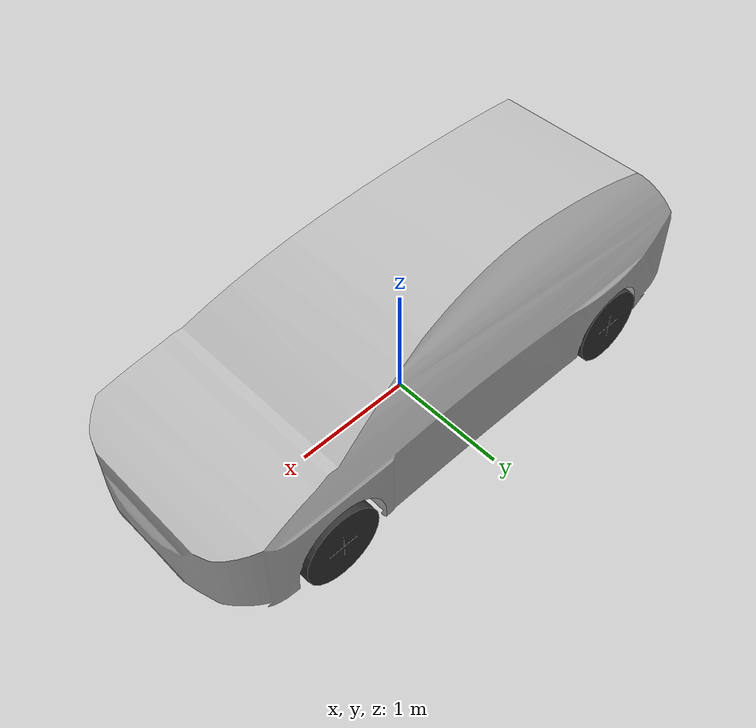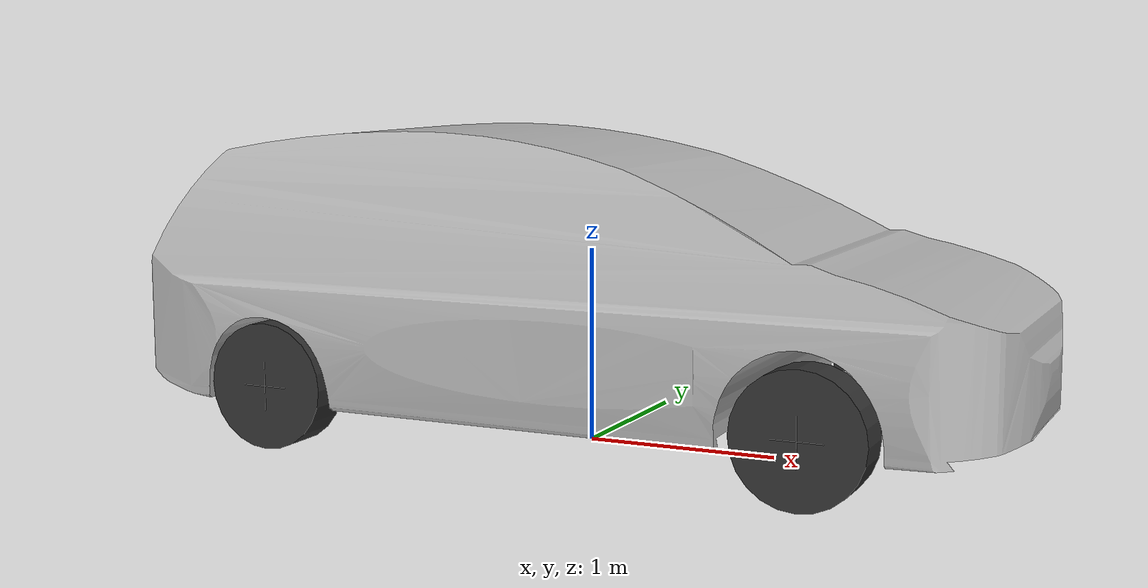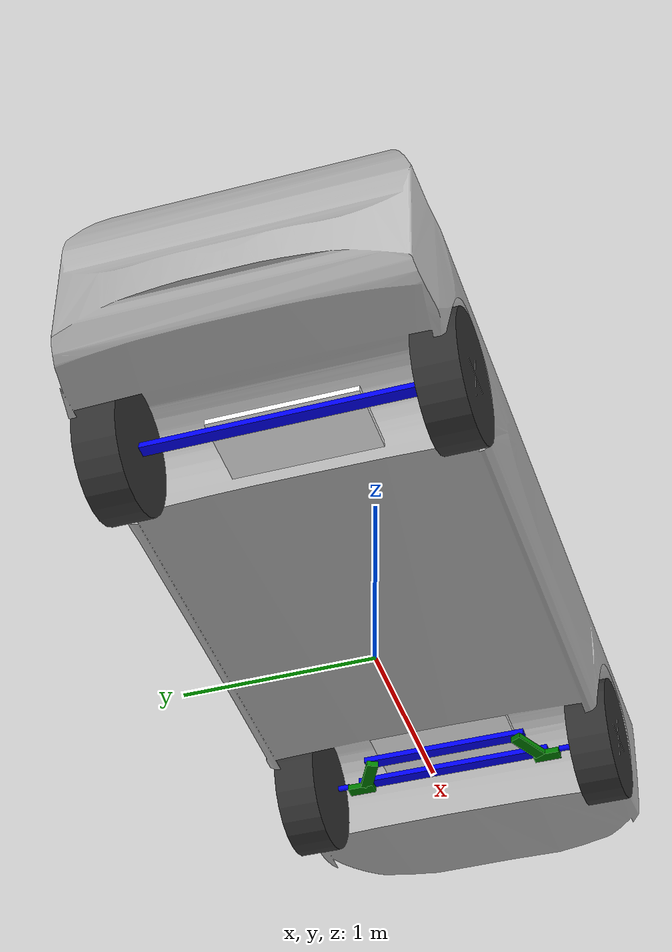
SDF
<?xml version='1.0' ?>

<sdf version='1.6'>
  <model name='prius_1'>
    <pose>0 0 0 0 0 0</pose>
    <link name='chassis_floor'>
      <pose>0 0 0.378326 0 0 0</pose>
      <inertial>
       <pose>0 0 0 0 0 0</pose>
        <mass>57.833</mass>
        <inertia>
          <ixx>2.71553</ixx>
          <ixy>0</ixy>
          <ixz>0</ixz>
          <iyy>68.9</iyy>
          <iyz>0</iyz>
          <izz>71.6063</izz>
        </inertia>
      </inertial>
      <visual name='main'>
        <pose>0 0 0 0 0 0</pose>
        <geometry>
          <box>
            <size>2.8808 0.75 0.030921</size>
          </box>
        </geometry>
        <material>
          <diffuse>1 1 1 1</diffuse>
        </material>
      </visual>
    </link>

    <link name='front_axle'>
      <pose>1.40948 0 0.323342 0 0 0</pose>
      <visual name='visual'>
        <pose>0 0 0 0 0 0</pose>
        <geometry>
          <box>
            <size>0.061842 1.05132 0.030921</size>
          </box>
        </geometry>
        <material>
          <diffuse>0 0 1 1</diffuse>
        </material>
      </visual>
    </link>

    <link name='left_tie_rod_arm'>
      <pose>1.23701032 0.40850253 0.292422 0 0 0</pose>
      <visual name='v2'>
        <pose>.06385963 0.03192981 0 0 0 0.463648</pose>
        <geometry>
          <box>
            <size>0.204637 0.061842 0.030921</size>
          </box>
        </geometry>
        <material>
          <diffuse>0 0.5 0 1</diffuse>
        </material>
      </visual>
      <visual name='v1'>
        <pose>.17246863 0.10851978 0 0 -0 0</pose>
        <geometry>
          <box>
            <size>0.061842 0.140955 0.030921</size>
          </box>
        </geometry>
        <material>
          <diffuse>0 0.5 0 1</diffuse>
        </material>
      </visual>
    </link>

    <link name='left_hub'>
      <pose>1.40948 0.61841 0.316482 1.570796326794896557998982 0 0</pose>
      <visual name='visual'>
        <pose>0 0 0 0 0 0</pose>
        <geometry>
          <cylinder>
            <length>0.0618421</length>
            <radius>0.0154605</radius>
          </cylinder>
        </geometry>
        <material>
          <diffuse>0 0 1 1</diffuse>
        </material>
      </visual>
    </link>

    <link name='tie_rod'>
      <pose>1.23702 0 0.323342 0 0 0</pose>
      <visual name='visual'>
        <pose>0 0 0 0 0 0</pose>
        <geometry>
          <box>
            <size>0.061842 0.878847 0.030921</size>
          </box>
        </geometry>
        <material>
          <diffuse>0 0 1 1</diffuse>
      </material>
      </visual>
    </link>

    <link name='left_wheel'>
      <pose>1.40948 0.801993 0.3164819999999999855511135 1.570796326794896557998982 0 0</pose>
      <inertial>
        <mass>14.28</mass>
        <inertia>
          <ixx>0.499912</ixx>
          <ixy>0</ixy>
          <ixz>0</ixz>
          <iyy>0.778439</iyy>
          <iyz>0</iyz>
          <izz>0.499912</izz>
        </inertia>
      </inertial>
      <visual name='m2'>
        <pose>0 0 -.1075 0 1.570796326794896557998982 3.141592653589793115997963</pose>
        <material>
          <diffuse>0.9 0.9 0.9 1</diffuse>
        </material>
        <geometry>
          <box>
            <size>0.0025 0.0025 0.25</size>
          </box>
        </geometry>
      </visual>
      <visual name='wheel'>
        <pose>0 0 0 0 0 0</pose>
        <geometry>
          <cylinder>
            <length>0.215</length>
            <radius>0.323342</radius>
          </cylinder>
        </geometry>
        <material>
          <diffuse>0.2 0.2 0.2 1</diffuse>
        </material>
      </visual>
      <visual name='m1'>
        <pose>0 0 -.1075 0 1.570796326794896557998982 1.570796326794896557998982</pose>
        <material>
          <diffuse>0.9 0.9 0.9 1</diffuse>
        </material>
        <geometry>
          <box>
            <size>0.0025 0.0025 0.25</size>
          </box>
        </geometry>
      </visual>
      <collision name='wheel'>
        <laser_retro>0</laser_retro>
        <max_contacts>10</max_contacts>
        <pose>0 0 0 0 0 0</pose>
        <geometry>
          <cylinder>
            <radius>0.323342</radius>
            <length>0.215</length>
          </cylinder>
        </geometry>
      </collision>
    </link>
    <link name='right_tie_rod_arm'>
      <pose>1.23701032 -0.40849616 0.292422 0 0 0</pose>
      <visual name='v1'>
        <pose>.17246863 -0.10851978 0 0 -0 0</pose>
        <geometry>
          <box>
            <size>0.061842 0.140955 0.030921</size>
          </box>
        </geometry>
        <material>
          <diffuse>0 0.5 0 1</diffuse>
        </material>
      </visual>
      <visual name='v2'>
        <pose>.06385963 -0.03192981 0 0 0 -0.463648</pose>
        <geometry>
          <box>
            <size>0.204637 0.061842 0.030921</size>
          </box>
        </geometry>
        <material>
          <diffuse>0 0.5 0 1</diffuse>
        </material>
      </visual>
    </link>
    <link name='right_hub'>
      <pose>1.40948 -0.61841 0.316482 1.570796326794896557998982 0 0</pose>
      <visual name='visual'>
        <pose>0 0 0 0 0 0</pose>
        <geometry>
          <cylinder>
            <length>0.0618421</length>
            <radius>0.0154605</radius>
          </cylinder>
        </geometry>
        <material>
          <diffuse>0 0 1 1</diffuse>
        </material>
      </visual>
    </link>
    <link name='right_wheel'>
      <pose>1.40948 -0.80198 0.3164819999999999855511135 1.570796326794896557998982 0 0</pose>
      <inertial>
        <mass>14.28</mass>
        <inertia>
          <ixx>0.499912</ixx>
          <ixy>0</ixy>
          <ixz>0</ixz>
          <iyy>0.778439</iyy>
          <iyz>0</iyz>
          <izz>0.499912</izz>
        </inertia>
      </inertial>
      <visual name='m2'>
        <pose>0 0 .1075 0 1.570796326794896557998982 3.141592653589793115997963</pose>
        <material>
          <diffuse>0.9 0.9 0.9 1</diffuse>
        </material>
        <geometry>
          <box>
            <size>0.0025 0.0025 0.25</size>
          </box>
        </geometry>
      </visual>
      <visual name='wheel'>
        <pose>0 0 0 0 0 0</pose>
        <geometry>
          <cylinder>
            <length>0.215</length>
            <radius>0.323342</radius>
          </cylinder>
        </geometry>
        <material>
          <diffuse>0.2 0.2 0.2 1</diffuse>
        </material>
      </visual>
      <visual name='m1'>
        <pose>0 0 0.1075 0 1.570796326794896557998982 1.570796326794896557998982</pose>
        <material>
          <diffuse>0.9 0.9 0.9 1</diffuse>
        </material>
        <geometry>
          <box>
            <size>0.0025 0.0025 0.25</size>
          </box>
        </geometry>
      </visual>
      <collision name='wheel'>
        <laser_retro>0</laser_retro>
        <max_contacts>10</max_contacts>
        <pose>0 0 0 0 0 0</pose>
        <geometry>
          <cylinder>
            <radius>0.323342</radius>
            <length>0.215</length>
          </cylinder>
        </geometry>
      </collision>
    </link>
    <link name='rear_axle'>
      <pose>-1.40948 0 0.323342 0 0 0</pose>
      <visual name='visual'>
        <pose>0 0 0 0 0 0</pose>
        <geometry>
          <box>
            <size>0.061842 1.38898 0.030921</size>
          </box>
        </geometry>
        <material>
          <diffuse>0 0 1 1</diffuse>
        </material>
      </visual>
    </link>
    <link name='left_wheel_rear'>
      <pose>-1.40948 0.8019899999999999806732376 0.323342 1.570796326794896557998982 0 0</pose>
      <inertial>
        <mass>14.28</mass>
        <inertia>
          <ixx>0.499912</ixx>
          <ixy>0</ixy>
          <ixz>0</ixz>
          <iyy>0.778439</iyy>
          <iyz>0</iyz>
          <izz>0.499912</izz>
        </inertia>
      </inertial>
      <visual name='m2'>
        <pose>0 0 -.1075 0 1.570796326794896557998982 3.141592653589793115997963</pose>
        <material>
          <diffuse>0.9 0.9 0.9 1</diffuse>
        </material>
        <geometry>
          <box>
            <size>0.0025 0.0025 0.25</size>
          </box>
        </geometry>
      </visual>
      <visual name='m1'>
        <pose>0 0 -.1075 0 1.570796326794896557998982 1.570796326794896557998982</pose>
        <material>
          <diffuse>0.9 0.9 0.9 1</diffuse>
        </material>
        <geometry>
          <box>
            <size>0.0025 0.0025 0.25</size>
          </box>
        </geometry>
      </visual>
      <visual name='wheel'>
        <pose>0 0 0 0 0 0</pose>
        <geometry>
          <cylinder>
            <length>0.215</length>
            <radius>0.323342</radius>
          </cylinder>
        </geometry>
        <material>
          <diffuse>0.2 0.2 0.2 1</diffuse>
        </material>
      </visual>
      <collision name='wheel'>
        <laser_retro>0</laser_retro>
        <max_contacts>10</max_contacts>
        <pose>0 0 0 0 0 0</pose>
        <geometry>
          <cylinder>
            <radius>0.323342</radius>
            <length>0.215</length>
          </cylinder>
        </geometry>
      </collision>
    </link>
    <link name='right_wheel_rear'>
      <pose>-1.40948 -0.8019899999999999806732376 0.323342 1.570796326794896557998982 0 0</pose>
      <inertial>
        <mass>14.28</mass>
        <inertia>
          <ixx>0.499912</ixx>
          <ixy>0</ixy>
          <ixz>0</ixz>
          <iyy>0.778439</iyy>
          <iyz>0</iyz>
          <izz>0.499912</izz>
        </inertia>
      </inertial>
      <visual name='m2'>
        <pose>0 0 .1075 0 1.570796326794896557998982 3.141592653589793115997963</pose>
        <material>
          <diffuse>0.9 0.9 0.9 1</diffuse>
        </material>
        <geometry>
          <box>
            <size>0.0025 0.0025 0.25</size>
          </box>
        </geometry>
      </visual>
      <visual name='wheel'>
        <pose>0 0 0 0 0 0</pose>
        <geometry>
          <cylinder>
            <length>0.215</length>
            <radius>0.323342</radius>
          </cylinder>
        </geometry>
        <material>
          <diffuse>0.2 0.2 0.2 1</diffuse>
        </material>
      </visual>
      <visual name='m1'>
        <pose>0 0 .1075 0 1.570796326794896557998982 1.570796326794896557998982</pose>
        <material>
          <diffuse>0.9 0.9 0.9 1</diffuse>
        </material>
        <geometry>
          <box>
            <size>0.0025 0.0025 0.25</size>
          </box>
        </geometry>
      </visual>
      <collision name='wheel'>
        <pose>0 0 0 0 0 0</pose>
        <geometry>
          <cylinder>
            <radius>0.323342</radius>
            <length>0.215</length>
          </cylinder>
        </geometry>
      </collision>
    </link>
    <link name='body'>
      <pose>0 0 0.385184 0 0 0</pose>
      <inertial>
        <pose>0 0 0 0 0 0</pose>
        <mass>5.42794</mass>
        <inertia>
          <ixx>0.00216238</ixx>
          <ixy>0</ixy>
          <ixz>0</ixz>
          <iyy>0.500375</iyy>
          <iyz>0</iyz>
          <izz>0.501672</izz>
        </inertia>
      </inertial>
      <visual name='visual'>
        <pose>-2.27 -0.91139 -0.21858 0 0 0</pose>
        <geometry>
          <mesh>
            <uri>prius.dae</uri>
          </mesh>
        </geometry>
        <material>
          <emissive>0 0 0 1</emissive>
        </material>
      </visual>
    </link>

    <joint name='chassis_floor_axle' type='fixed'>
      <parent>chassis_floor</parent>
      <child>front_axle</child>
      <pose>0 0 0 0 0 0</pose>
    </joint>
    <joint name='steering' type='revolute'>
      <parent>front_axle</parent>
      <child>left_tie_rod_arm</child>
      <pose>0.17246968 0.08622747 0 0 0 0</pose>
      <axis>
        <xyz>0 0 1</xyz>
        <limit>
          <lower>-0.401426</lower>
          <upper>0.5</upper>
        </limit>
      </axis>
    </joint>
    <joint name='left_hub' type='fixed'>
      <parent>left_tie_rod_arm</parent>
      <child>left_hub</child>
      <pose>0 0 0 0 0 0</pose>
    </joint>
    <joint name='left_pin' type='revolute'>
      <parent>left_tie_rod_arm</parent>
      <child>tie_rod</child>
      <pose>0 0.4085 0 0 0 0</pose>
      <axis>
        <xyz>0 0 1</xyz>
        <limit>
          <lower>-1.5</lower>
          <upper>1.5</upper>
          <effort>0</effort>
        </limit>
      </axis>
    </joint>
    <joint name='left_wheel_joint' type='revolute'>
      <parent>left_hub</parent>
      <child>left_wheel</child>
      <pose>0 0 0 0 0 0</pose>
      <axis>
        <xyz>0 1 0</xyz>
        <use_parent_model_frame>1</use_parent_model_frame>
      </axis>
    </joint>
    <joint name='axle_tie_rod_arm' type='revolute'>
      <parent>front_axle</parent>
      <child>right_tie_rod_arm</child>
      <pose>0.17246968 -0.08623384 0 0 0 0</pose>
      <axis>
        <xyz>0 0 1</xyz>
        <limit>
          <lower>-0.401426</lower>
          <upper>0.5</upper>
          <effort>0</effort>
        </limit>
      </axis>
    </joint>
    <joint name='right_hub' type='fixed'>
      <parent>right_tie_rod_arm</parent>
      <child>right_hub</child>
      <pose>0 0 0 0 0 0</pose>
    </joint>
    <joint name='right_pin' type='revolute'>
      <parent>right_tie_rod_arm</parent>
      <child>tie_rod</child>
      <pose>0 -0.817006 0 0 0 0</pose>
      <axis>
        <xyz>0 0 1</xyz>
        <limit>
          <lower>-3.141592653589793115997963</lower>
          <upper>3.141592653589793115997963</upper>
          <effort>0</effort>
        </limit>
      </axis>
    </joint>
    <joint name='right_wheel_joint' type='revolute'>
      <parent>right_hub</parent>
      <child>right_wheel</child>
      <pose>0 0 0 0 0 0</pose>
      <axis>
        <xyz>0 1 0</xyz>
        <use_parent_model_frame>1</use_parent_model_frame>
      </axis>
    </joint>
    <joint name='chassis_rear_axle' type='fixed'>
      <parent>chassis_floor</parent>
      <child>rear_axle</child>
      <pose>0 0 0 0 0 0</pose>
    </joint>
    <joint name='rear_left_wheel_joint' type='revolute'>
      <parent>rear_axle</parent>
      <child>left_wheel_rear</child>
      <pose>0 0 0 0 0 0</pose>
      <axis>
        <xyz>0 1 0</xyz>
        <use_parent_model_frame>1</use_parent_model_frame>
        <limit>
          <effort>0</effort>
        </limit>
      </axis>
    </joint>
    <joint name='rear_right_wheel_joint' type='revolute'>
      <parent>rear_axle</parent>
      <child>right_wheel_rear</child>
      <pose>0 0 0 0 0 0</pose>
      <axis>
        <xyz>0 1 0</xyz>
        <use_parent_model_frame>1</use_parent_model_frame>
        <limit>
          <effort>0</effort>
        </limit>
      </axis>
    </joint>
    <joint name='body' type='fixed'>
      <parent>chassis_floor</parent>
      <child>body</child>
      <pose>0 0 0 0 0 0</pose>
    </joint>
  </model>
</sdf>
